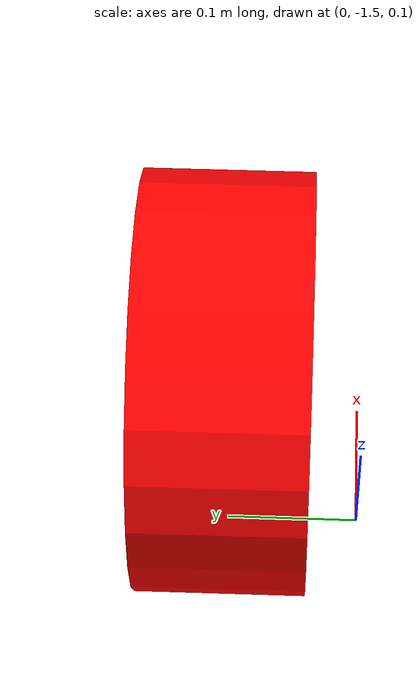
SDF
<?xml version="1.0"?>
<!-- 受控负例：红色圆柱端面朝向相机，是最易与球混淆的单视角干扰。 -->
<sdf version="1.9"><model name="hw_suite_red_cylinder_face"><static>true</static><pose>0 -1.40 0.30 1.570796 0 0</pose><link name="link"><visual name="visual"><geometry><cylinder><radius>0.15</radius><length>0.12</length></cylinder></geometry><material><ambient>1 0 0 1</ambient><diffuse>1 0 0 1</diffuse></material></visual></link></model></sdf>
